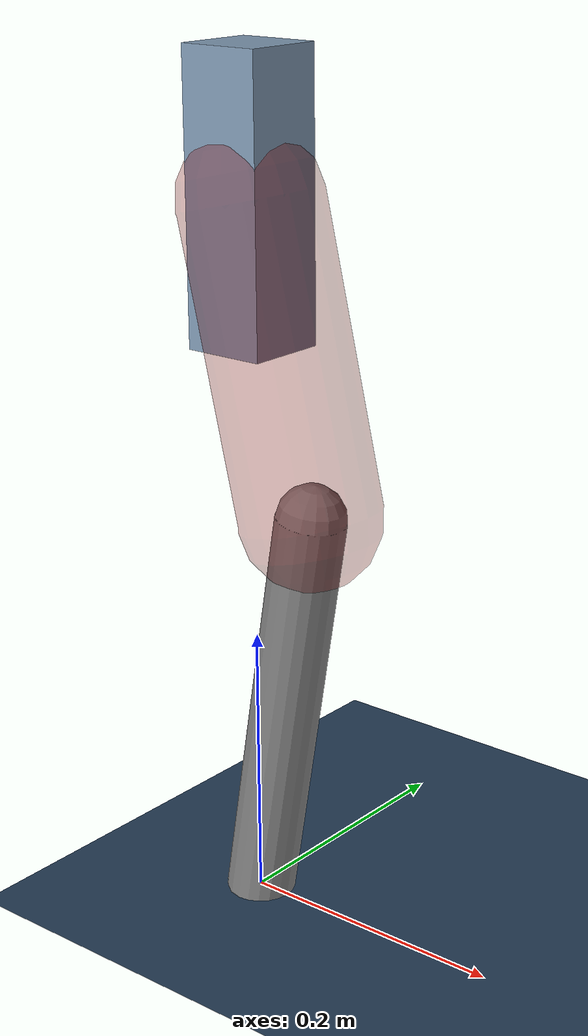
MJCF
<mujoco model="Hopper2D">
	<compiler inertiafromgeom="true" angle="radian" />
	<option timestep="0.001" integrator="implicit" cone="elliptic" solver="Newton" tolerance="1e-10" />

	<default>
		<geom contype="1" conaffinity="1" condim="3" friction="2 0.005 0.0001" solref="0.005 1" />
		<joint limited="true" damping="0.1" />
	</default>

	<asset>
		<texture name="skybox" type="skybox" builtin="gradient" rgb1=".4 .6 .8" rgb2="0 0 0" width="800" height="800" />
		<texture name="grid" type="2d" builtin="checker" rgb1=".1 .2 .3" rgb2=".2 .3 .4" width="300" height="300" mark="edge" markrgb=".2 .3 .4" />
		<material name="ground" texture="grid" texrepeat="1 1" texuniform="true" reflectance="0.1" />
		<material name="leg" rgba="0.5 0.6 0.7 1" />
	</asset>

	<worldbody>

		<geom name="floor" type="plane" size="5 5 0.25" material="ground" />

		<light directional="false" diffuse="0.8 0.8 0.8" specular="0.3 0.3 0.3" pos="0 0 2" dir="0 0 -1" />
		<light mode="targetbodycom" target="base" directional="false" diffuse="0.8 0.8 0.8" specular="0.3 0.3 0.3" pos="0 0 2" dir="0 0 -1" />

		<camera name="fixed" pos="0 -2 1" xyaxes="1 0 0 0 0 1" />
		<camera name="tracking" mode="trackcom" pos="0 -3 1" />

		<body name="root" pos="0 0 0.5096919922321873">
			<joint name="slide_x" type="slide" axis="1 0 0" range="-100 100" />
			<joint name="slide_z" type="slide" axis="0 0 1" range="0 10" />

			<body name="base" pos="0 0 0">
				<geom name="torso" type="box" size="0.03 0.03 0.1" mass="3.889" material="leg" />

				<body name="link1" pos="0 0 0" euler="0 1.33845208536298 0">
					<joint type="hinge" axis="0 -1 0" pos="0 0 0" name="hinge1" limited="true" range="-3.14 3.14" stiffness="0" damping="0.1" />
					<geom name="thigh" type="capsule" fromto="0 0 0 0.21720822072532783 0 0" size="0.05" rgba="0.5 0 0 0.3" mass="0.7726205518133196" />

					<body name="link2" pos="0.21720822072532783 0 0" euler="0 0.3984522460606424 0">
						<joint type="hinge" axis="0 -1 0" pos="0 0 0" name="hinge2" limited="true" range="-3.14 3.14" stiffness="0" damping="0.1" />
						<geom name="shank" type="capsule" fromto="0 0 0 0.3024837715068595 0 0" size="0.025" mass="0.4854870172054876" />

					</body>
				</body>
			</body>
		</body>
	</worldbody>

	<actuator>
		<motor name="torque1" joint="hinge1" ctrlrange="-199.69886320995556 199.69886320995556" ctrllimited="true" gear="1" />
		<motor name="torque2" joint="hinge2" ctrlrange="-115.17751630895303 115.17751630895303" ctrllimited="true" gear="1" />
	</actuator>
</mujoco>
